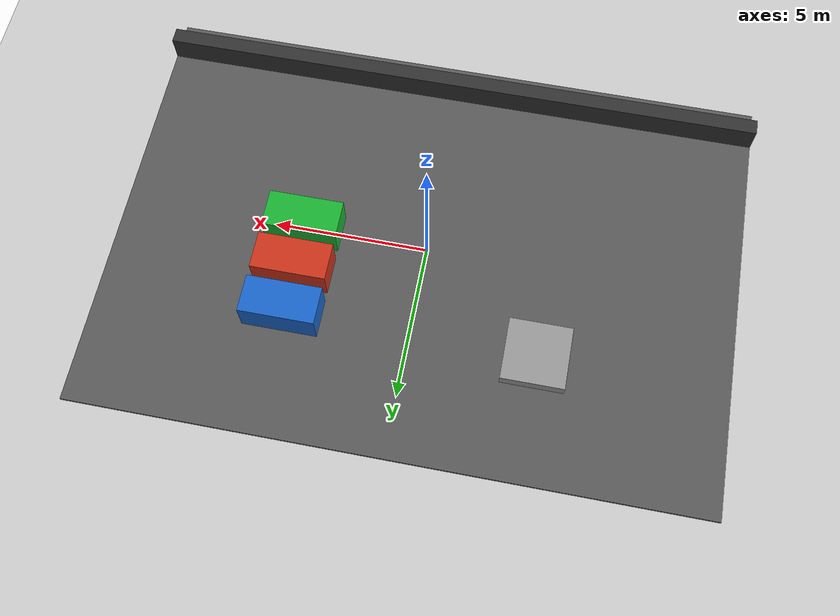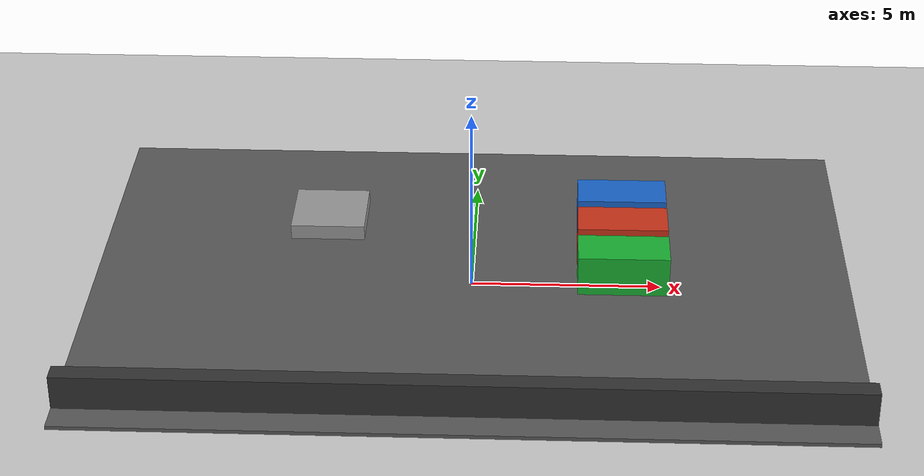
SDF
<?xml version="1.0"?>
<sdf version="1.6">
  <world name="default">

    <include>
      <uri>model://ground_plane</uri>
    </include>

    <include>
      <uri>model://sun</uri>
    </include>

    <scene>
      <shadows>false</shadows>
    </scene>

    <!-- ROS GAZEBO PLUGIN -->

    <!-- PORT FLOOR -->

    <model name="port_floor">
      <static>true</static>

      <link name="link">

        <collision name="collision">
          <geometry>
            <box>
              <size>20 14 0.1</size>
            </box>
          </geometry>

          <pose>0 0 0.05 0 0 0</pose>
        </collision>

        <visual name="visual">

          <geometry>
            <box>
              <size>20 14 0.1</size>
            </box>
          </geometry>

          <pose>0 0 0.05 0 0 0</pose>

          <material>
            <ambient>0.25 0.25 0.25 1</ambient>
            <diffuse>0.35 0.35 0.35 1</diffuse>
          </material>

        </visual>

      </link>

      <pose>0 0 0 0 0 0</pose>

    </model>

    <!-- CONTAINER 1 -->

    <model name="container_1">
      <static>true</static>

      <link name="link">

        <collision name="collision">
          <geometry>
            <box>
              <size>2.4 1.2 1.2</size>
            </box>
          </geometry>
        </collision>

        <visual name="visual">

          <geometry>
            <box>
              <size>2.4 1.2 1.2</size>
            </box>
          </geometry>

          <material>
            <ambient>0.1 0.4 0.8 1</ambient>
            <diffuse>0.1 0.4 0.8 1</diffuse>
          </material>

        </visual>

      </link>

      <pose>4 3 0.6 0 0 0</pose>

    </model>

    <!-- CONTAINER 2 -->

    <model name="container_2">
      <static>true</static>

      <link name="link">

        <collision name="collision">
          <geometry>
            <box>
              <size>2.4 1.2 1.2</size>
            </box>
          </geometry>
        </collision>

        <visual name="visual">

          <geometry>
            <box>
              <size>2.4 1.2 1.2</size>
            </box>
          </geometry>

          <material>
            <ambient>0.8 0.2 0.1 1</ambient>
            <diffuse>0.8 0.2 0.1 1</diffuse>
          </material>

        </visual>

      </link>

      <pose>4 1.5 0.6 0 0 0</pose>

    </model>

    <!-- CONTAINER 3 -->

    <model name="container_3">
      <static>true</static>

      <link name="link">

        <collision name="collision">
          <geometry>
            <box>
              <size>2.4 1.2 1.2</size>
            </box>
          </geometry>
        </collision>

        <visual name="visual">

          <geometry>
            <box>
              <size>2.4 1.2 1.2</size>
            </box>
          </geometry>

          <material>
            <ambient>0.1 0.7 0.2 1</ambient>
            <diffuse>0.1 0.7 0.2 1</diffuse>
          </material>

        </visual>

      </link>

      <pose>4 0 0.6 0 0 0</pose>

    </model>

    <!-- WALL / QUAI -->

    <model name="quai_wall">
      <static>true</static>

      <link name="link">

        <collision name="collision">
          <geometry>
            <box>
              <size>20 0.5 1</size>
            </box>
          </geometry>
        </collision>

        <visual name="visual">

          <geometry>
            <box>
              <size>20 0.5 1</size>
            </box>
          </geometry>

          <material>
            <ambient>0.15 0.15 0.15 1</ambient>
            <diffuse>0.2 0.2 0.2 1</diffuse>
          </material>

        </visual>

      </link>

      <pose>0 -6 0.5 0 0 0</pose>

    </model>

    <!-- PARKING OBSTACLE -->

    <model name="parking_obstacle">
      <static>true</static>

      <link name="link">

        <collision name="collision">
          <geometry>
            <box>
              <size>2 2 0.5</size>
            </box>
          </geometry>
        </collision>

        <visual name="visual">

          <geometry>
            <box>
              <size>2 2 0.5</size>
            </box>
          </geometry>

          <material>
            <ambient>0.5 0.5 0.5 1</ambient>
            <diffuse>0.6 0.6 0.6 1</diffuse>
          </material>

        </visual>

      </link>

      <pose>-4 3 0.25 0 0 0</pose>

    </model>

    <!-- CAMERA VIEW -->

    <gui fullscreen="0">

      <camera name="user_camera">

        <pose>
          0 -18 16 0 0.65 1.57
        </pose>

        <view_controller>orbit</view_controller>

        <projection_type>perspective</projection_type>

      </camera>

    </gui>

  </world>

</sdf>
